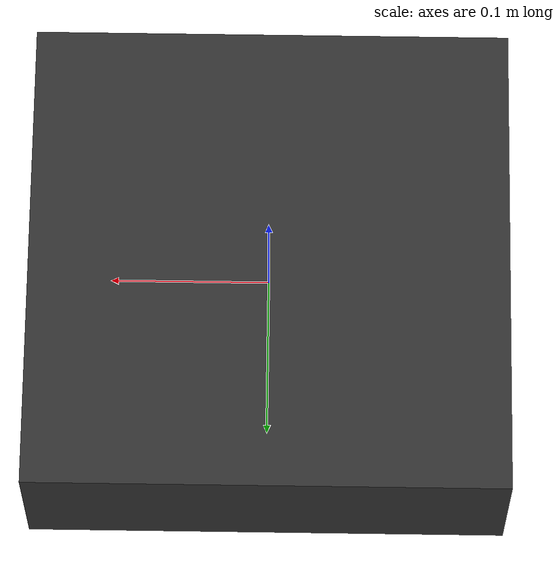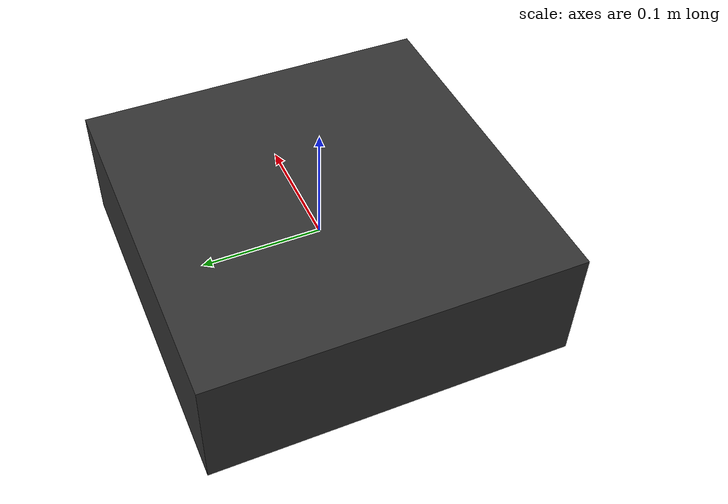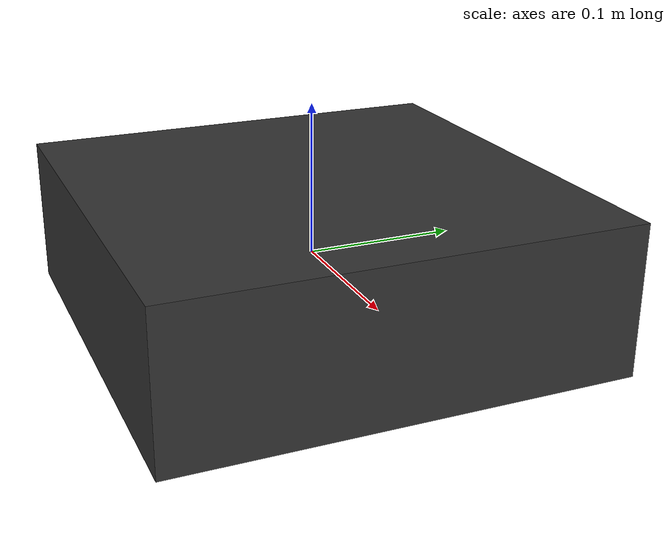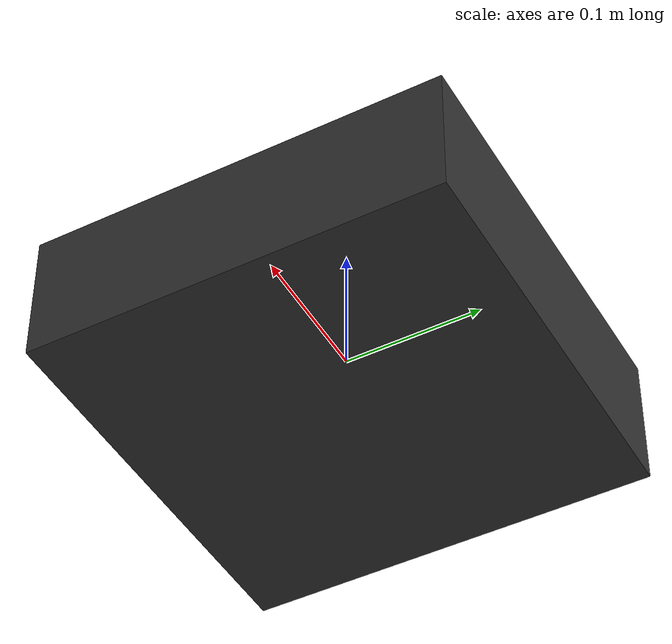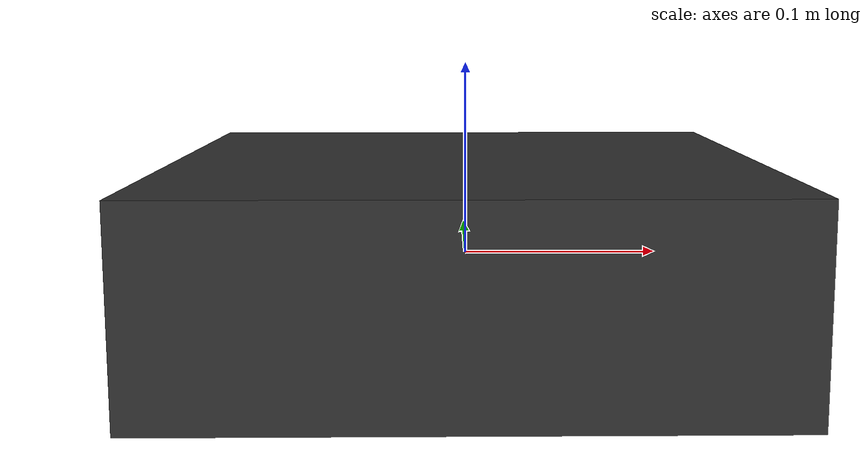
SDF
<?xml version="1.0"?>
<sdf version="1.9">
  <model name="x500_maze_explorer">
    <link name="base_link">
      <inertial>
        <mass>1.5</mass>
        <inertia><ixx>0.02</ixx><iyy>0.02</iyy><izz>0.04</izz><ixy>0</ixy><ixz>0</ixz><iyz>0</iyz></inertia>
      </inertial>
      <visual name="base_visual">
        <geometry><box><size>0.3 0.3 0.1</size></box></geometry>
        <material><diffuse>0.2 0.2 0.2 1</diffuse></material>
      </visual>
    </link>

    <!-- IMU -->
    <link name="imu_link">
      <pose>0 0 0 0 0 0</pose>
      <sensor name="imu_sensor" type="imu">
        <always_on>true</always_on>
        <update_rate>200</update_rate>
        <visualize>false</visualize>
        <topic>/imu</topic>
        <gz_frame_id>imu_link</gz_frame_id>
      </sensor>
    </link>
    <joint name="imu_joint" type="fixed">
      <parent>base_link</parent><child>imu_link</child>
    </joint>

    <!-- Stereo Camera for VIO (left & right) -->
    <link name="stereo_left_link">
      <pose>0.15 0.05 0.05 0 0 0</pose>
      <sensor name="stereo_left_camera" type="camera">
        <camera>
          <horizontal_fov>1.57</horizontal_fov>
          <image><width>640</width><height>480</height></image>
          <clip><near>0.1</near><far>30</far></clip>
        </camera>
        <always_on>true</always_on>
        <update_rate>30</update_rate>
        <topic>/camera/left/image_raw</topic>
        <gz_frame_id>stereo_left_link</gz_frame_id>
      </sensor>
    </link>
    <joint name="stereo_left_joint" type="fixed"><parent>base_link</parent><child>stereo_left_link</child></joint>

    <link name="stereo_right_link">
      <pose>0.15 -0.05 0.05 0 0 0</pose>
      <sensor name="stereo_right_camera" type="camera">
        <camera>
          <horizontal_fov>1.57</horizontal_fov>
          <image><width>640</width><height>480</height></image>
          <clip><near>0.1</near><far>30</far></clip>
        </camera>
        <always_on>true</always_on>
        <update_rate>30</update_rate>
        <topic>/camera/right/image_raw</topic>
        <gz_frame_id>stereo_right_link</gz_frame_id>
      </sensor>
    </link>
    <joint name="stereo_right_joint" type="fixed"><parent>base_link</parent><child>stereo_right_link</child></joint>

    <!-- RGB Camera for YOLO Person Detection -->
    <link name="rgb_camera_link">
      <pose>0.2 0 0 0 0.2 0</pose>
      <sensor name="rgb_camera" type="camera">
        <camera>
          <horizontal_fov>1.2</horizontal_fov>
          <image><width>1280</width><height>720</height></image>
          <clip><near>0.1</near><far>50</far></clip>
        </camera>
        <always_on>true</always_on>
        <update_rate>15</update_rate>
        <topic>/camera/rgb/image_raw</topic>
        <gz_frame_id>rgb_camera_link</gz_frame_id>
      </sensor>
    </link>
    <joint name="rgb_camera_joint" type="fixed"><parent>base_link</parent><child>rgb_camera_link</child></joint>

    <!-- Depth Camera for mapping -->
    <link name="depth_camera_link">
      <pose>0.2 0 -0.05 0 0.2 0</pose>
      <sensor name="depth_camera" type="depth_camera">
        <camera>
          <horizontal_fov>1.5</horizontal_fov>
          <image><width>640</width><height>480</height></image>
          <clip><near>0.2</near><far>10</far></clip>
        </camera>
        <always_on>true</always_on>
        <update_rate>10</update_rate>
        <topic>/camera/depth</topic>
        <gz_frame_id>depth_camera_link</gz_frame_id>
      </sensor>
    </link>
    <joint name="depth_camera_joint" type="fixed"><parent>base_link</parent><child>depth_camera_link</child></joint>

    <!-- RPLidar A2 - 360deg 2D lidar -->
    <link name="rplidar_link">
      <pose>0 0 0.12 0 0 0</pose>
      <sensor name="rplidar" type="gpu_ray">
        <gz_frame_id>rplidar_link</gz_frame_id>
        <topic>/scan</topic>
        <ray>
          <scan>
            <horizontal><samples>720</samples><resolution>1</resolution><min_angle>-3.14159</min_angle><max_angle>3.14159</max_angle></horizontal>
          </scan>
          <range><min>0.15</min><max>12</max><resolution>0.01</resolution></range>
        </ray>
        <always_on>true</always_on>
        <update_rate>10</update_rate>
        <visualize>true</visualize>
      </sensor>
    </link>
    <joint name="rplidar_joint" type="fixed"><parent>base_link</parent><child>rplidar_link</child></joint>

    <!-- PX4 Plugins -->
    <plugin filename="gz-sim-multicopter-motor-model-system" name="gz::sim::systems::MulticopterMotorModel">
      <jointName>rotor_0_joint</jointName><linkName>rotor_0</linkName><turningDirection>ccw</turningDirection><timeConstantUp>0.0125</timeConstantUp><timeConstantDown>0.025</timeConstantDown><maxRotVelocity>1000</maxRotVelocity><motorConstant>8.54858e-06</motorConstant><momentConstant>0.016</momentConstant><commandSubTopic>/model/x500_maze_explorer/joint/rotor_0_joint/cmd_vel</commandSubTopic><motorNumber>0</motorNumber><rotorDragCoefficient>8e-05</rotorDragCoefficient><rollingMomentCoefficient>1e-06</rollingMomentCoefficient><rotorVelocitySlowdownSim>10</rotorVelocitySlowdownSim>
    </plugin>
    <!-- Simplified: 4 rotors would be defined similarly, but for brevity use generic multicopter -->
    <plugin filename="gz-sim-multicopter-vehicle-system" name="gz::sim::systems::MulticopterVehicle">
      <rotorJointName>rotor_0_joint</rotorJointName>
    </plugin>

    <!-- For PX4 SITL integration -->
    <plugin filename="gz-sim-air-pressure-system" name="gz::sim::systems::AirPressure">
      <topic>/air_pressure</topic>
    </plugin>
    <plugin filename="gz-sim-magnetometer-system" name="gz::sim::systems::Magnetometer">
      <topic>/magnetometer</topic>
    </plugin>

  </model>
</sdf>
